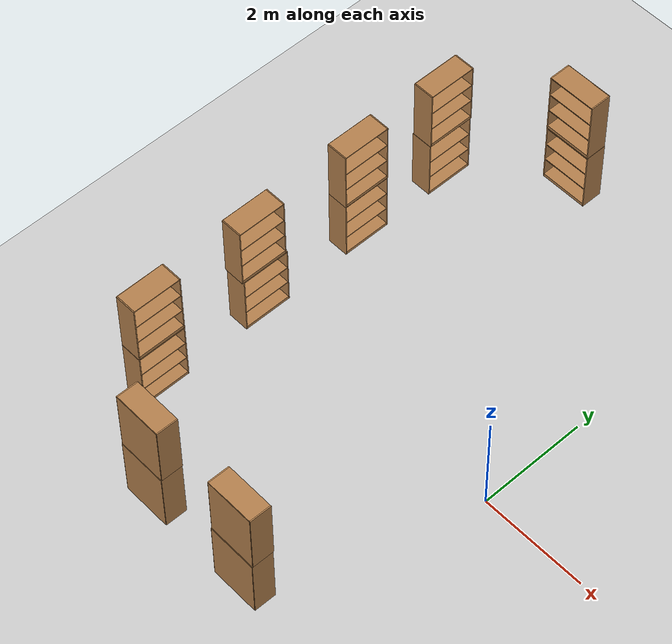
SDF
<sdf version="1.6">
 <world name="default">
  <model name="ground_plane">
   <static>1</static>
   <link name="link">
    <collision name="collision">
     <geometry><plane><normal>0 0 1</normal><size>100 100</size></plane></geometry>
     <surface><friction><ode><mu>100</mu><mu2>50</mu2></ode></friction></surface>
    </collision>
    <visual name="visual">
     <cast_shadows>0</cast_shadows>
     <geometry><plane><normal>0 0 1</normal><size>100 100</size></plane></geometry>
     <material>
      <script><uri>file://media/materials/scripts/gazebo.material</uri><name>Gazebo/Grey</name></script>
     </material>
    </visual>
   </link>
  </model>
  <model name="bookshelf_2_clone_clone">
   <static>1</static>
   <link name="link">
    <inertial><mass>1</mass></inertial>
    <collision name="back">
     <pose>0 0.005 0.6 0 -0 0</pose>
     <geometry><box><size>0.9 0.01 1.2</size></box></geometry>
    </collision>
    <visual name="visual1">
     <pose>0 0.005 0.6 0 -0 0</pose>
     <geometry><box><size>0.9 0.01 1.2</size></box></geometry>
     <material>
      <script><uri>file://media/materials/scripts/gazebo.material</uri><name>Gazebo/Wood</name></script>
     </material>
    </visual>
    <collision name="left_side">
     <pose>0.45 -0.195 0.6 0 -0 0</pose>
     <geometry><box><size>0.02 0.4 1.2</size></box></geometry>
    </collision>
    <visual name="visual2">
     <pose>0.45 -0.195 0.6 0 -0 0</pose>
     <geometry><box><size>0.02 0.4 1.2</size></box></geometry>
     <material>
      <script><uri>file://media/materials/scripts/gazebo.material</uri><name>Gazebo/Wood</name></script>
     </material>
    </visual>
    <collision name="right_side">
     <pose>-0.45 -0.195 0.6 0 -0 0</pose>
     <geometry><box><size>0.02 0.4 1.2</size></box></geometry>
    </collision>
    <visual name="visual3">
     <pose>-0.45 -0.195 0.6 0 -0 0</pose>
     <geometry><box><size>0.02 0.4 1.2</size></box></geometry>
     <material>
      <script><uri>file://media/materials/scripts/gazebo.material</uri><name>Gazebo/Wood</name></script>
     </material>
    </visual>
    <collision name="bottom">
     <pose>0 -0.195 0.03 0 -0 0</pose>
     <geometry><box><size>0.88 0.4 0.06</size></box></geometry>
    </collision>
    <visual name="visual4">
     <pose>0 -0.195 0.03 0 -0 0</pose>
     <geometry><box><size>0.88 0.4 0.06</size></box></geometry>
     <material>
      <script><uri>file://media/materials/scripts/gazebo.material</uri><name>Gazebo/Wood</name></script>
     </material>
    </visual>
    <collision name="top">
     <pose>0 -0.195 1.19 0 -0 0</pose>
     <geometry><box><size>0.88 0.4 0.02</size></box></geometry>
    </collision>
    <visual name="visual5">
     <pose>0 -0.195 1.19 0 -0 0</pose>
     <geometry><box><size>0.88 0.4 0.02</size></box></geometry>
     <material>
      <script><uri>file://media/materials/scripts/gazebo.material</uri><name>Gazebo/Wood</name></script>
     </material>
    </visual>
    <collision name="low_shelf">
     <pose>0 -0.195 0.43 0 -0 0</pose>
     <geometry><box><size>0.88 0.4 0.02</size></box></geometry>
    </collision>
    <visual name="visual6">
     <pose>0 -0.195 0.43 0 -0 0</pose>
     <geometry><box><size>0.88 0.4 0.02</size></box></geometry>
     <material>
      <script><uri>file://media/materials/scripts/gazebo.material</uri><name>Gazebo/Wood</name></script>
     </material>
    </visual>
    <collision name="high_shelf">
     <pose>0 -0.195 0.8 0 -0 0</pose>
     <geometry><box><size>0.88 0.4 0.02</size></box></geometry>
    </collision>
    <visual name="visual7">
     <pose>0 -0.195 0.8 0 -0 0</pose>
     <geometry><box><size>0.88 0.4 0.02</size></box></geometry>
     <material>
      <script><uri>file://media/materials/scripts/gazebo.material</uri><name>Gazebo/Wood</name></script>
     </material>
    </visual>
   </link>
   <pose>-3.46853 5.62428 0 0 -0 0</pose>
  </model>
  <model name="bookshelf_3_clone_clone">
   <static>1</static>
   <link name="link">
    <inertial><mass>1</mass></inertial>
    <collision name="back">
     <pose>0 0.005 0.6 0 -0 0</pose>
     <geometry><box><size>0.9 0.01 1.2</size></box></geometry>
    </collision>
    <visual name="visual1">
     <pose>0 0.005 0.6 0 -0 0</pose>
     <geometry><box><size>0.9 0.01 1.2</size></box></geometry>
     <material>
      <script><uri>file://media/materials/scripts/gazebo.material</uri><name>Gazebo/Wood</name></script>
     </material>
    </visual>
    <collision name="left_side">
     <pose>0.45 -0.195 0.6 0 -0 0</pose>
     <geometry><box><size>0.02 0.4 1.2</size></box></geometry>
    </collision>
    <visual name="visual2">
     <pose>0.45 -0.195 0.6 0 -0 0</pose>
     <geometry><box><size>0.02 0.4 1.2</size></box></geometry>
     <material>
      <script><uri>file://media/materials/scripts/gazebo.material</uri><name>Gazebo/Wood</name></script>
     </material>
    </visual>
    <collision name="right_side">
     <pose>-0.45 -0.195 0.6 0 -0 0</pose>
     <geometry><box><size>0.02 0.4 1.2</size></box></geometry>
    </collision>
    <visual name="visual3">
     <pose>-0.45 -0.195 0.6 0 -0 0</pose>
     <geometry><box><size>0.02 0.4 1.2</size></box></geometry>
     <material>
      <script><uri>file://media/materials/scripts/gazebo.material</uri><name>Gazebo/Wood</name></script>
     </material>
    </visual>
    <collision name="bottom">
     <pose>0 -0.195 0.03 0 -0 0</pose>
     <geometry><box><size>0.88 0.4 0.06</size></box></geometry>
    </collision>
    <visual name="visual4">
     <pose>0 -0.195 0.03 0 -0 0</pose>
     <geometry><box><size>0.88 0.4 0.06</size></box></geometry>
     <material>
      <script><uri>file://media/materials/scripts/gazebo.material</uri><name>Gazebo/Wood</name></script>
     </material>
    </visual>
    <collision name="top">
     <pose>0 -0.195 1.19 0 -0 0</pose>
     <geometry><box><size>0.88 0.4 0.02</size></box></geometry>
    </collision>
    <visual name="visual5">
     <pose>0 -0.195 1.19 0 -0 0</pose>
     <geometry><box><size>0.88 0.4 0.02</size></box></geometry>
     <material>
      <script><uri>file://media/materials/scripts/gazebo.material</uri><name>Gazebo/Wood</name></script>
     </material>
    </visual>
    <collision name="low_shelf">
     <pose>0 -0.195 0.43 0 -0 0</pose>
     <geometry><box><size>0.88 0.4 0.02</size></box></geometry>
    </collision>
    <visual name="visual6">
     <pose>0 -0.195 0.43 0 -0 0</pose>
     <geometry><box><size>0.88 0.4 0.02</size></box></geometry>
     <material>
      <script><uri>file://media/materials/scripts/gazebo.material</uri><name>Gazebo/Wood</name></script>
     </material>
    </visual>
    <collision name="high_shelf">
     <pose>0 -0.195 0.8 0 -0 0</pose>
     <geometry><box><size>0.88 0.4 0.02</size></box></geometry>
    </collision>
    <visual name="visual7">
     <pose>0 -0.195 0.8 0 -0 0</pose>
     <geometry><box><size>0.88 0.4 0.02</size></box></geometry>
     <material>
      <script><uri>file://media/materials/scripts/gazebo.material</uri><name>Gazebo/Wood</name></script>
     </material>
    </visual>
   </link>
   <pose>-3.47373 5.62521 1.20481 0 -0 0</pose>
  </model>
  <model name="bookshelf_5_clone_2">
   <static>1</static>
   <link name="link">
    <inertial><mass>1</mass></inertial>
    <collision name="back">
     <pose>0 0.005 0.6 0 -0 0</pose>
     <geometry><box><size>0.9 0.01 1.2</size></box></geometry>
    </collision>
    <visual name="visual1">
     <pose>0 0.005 0.6 0 -0 0</pose>
     <geometry><box><size>0.9 0.01 1.2</size></box></geometry>
     <material>
      <script><uri>file://media/materials/scripts/gazebo.material</uri><name>Gazebo/Wood</name></script>
     </material>
    </visual>
    <collision name="left_side">
     <pose>0.45 -0.195 0.6 0 -0 0</pose>
     <geometry><box><size>0.02 0.4 1.2</size></box></geometry>
    </collision>
    <visual name="visual2">
     <pose>0.45 -0.195 0.6 0 -0 0</pose>
     <geometry><box><size>0.02 0.4 1.2</size></box></geometry>
     <material>
      <script><uri>file://media/materials/scripts/gazebo.material</uri><name>Gazebo/Wood</name></script>
     </material>
    </visual>
    <collision name="right_side">
     <pose>-0.45 -0.195 0.6 0 -0 0</pose>
     <geometry><box><size>0.02 0.4 1.2</size></box></geometry>
    </collision>
    <visual name="visual3">
     <pose>-0.45 -0.195 0.6 0 -0 0</pose>
     <geometry><box><size>0.02 0.4 1.2</size></box></geometry>
     <material>
      <script><uri>file://media/materials/scripts/gazebo.material</uri><name>Gazebo/Wood</name></script>
     </material>
    </visual>
    <collision name="bottom">
     <pose>0 -0.195 0.03 0 -0 0</pose>
     <geometry><box><size>0.88 0.4 0.06</size></box></geometry>
    </collision>
    <visual name="visual4">
     <pose>0 -0.195 0.03 0 -0 0</pose>
     <geometry><box><size>0.88 0.4 0.06</size></box></geometry>
     <material>
      <script><uri>file://media/materials/scripts/gazebo.material</uri><name>Gazebo/Wood</name></script>
     </material>
    </visual>
    <collision name="top">
     <pose>0 -0.195 1.19 0 -0 0</pose>
     <geometry><box><size>0.88 0.4 0.02</size></box></geometry>
    </collision>
    <visual name="visual5">
     <pose>0 -0.195 1.19 0 -0 0</pose>
     <geometry><box><size>0.88 0.4 0.02</size></box></geometry>
     <material>
      <script><uri>file://media/materials/scripts/gazebo.material</uri><name>Gazebo/Wood</name></script>
     </material>
    </visual>
    <collision name="low_shelf">
     <pose>0 -0.195 0.43 0 -0 0</pose>
     <geometry><box><size>0.88 0.4 0.02</size></box></geometry>
    </collision>
    <visual name="visual6">
     <pose>0 -0.195 0.43 0 -0 0</pose>
     <geometry><box><size>0.88 0.4 0.02</size></box></geometry>
     <material>
      <script><uri>file://media/materials/scripts/gazebo.material</uri><name>Gazebo/Wood</name></script>
     </material>
    </visual>
    <collision name="high_shelf">
     <pose>0 -0.195 0.8 0 -0 0</pose>
     <geometry><box><size>0.88 0.4 0.02</size></box></geometry>
    </collision>
    <visual name="visual7">
     <pose>0 -0.195 0.8 0 -0 0</pose>
     <geometry><box><size>0.88 0.4 0.02</size></box></geometry>
     <material>
      <script><uri>file://media/materials/scripts/gazebo.material</uri><name>Gazebo/Wood</name></script>
     </material>
    </visual>
   </link>
   <pose>-1.42311 -3.81825 0 0 -0 3.12955</pose>
  </model>
  <model name="bookshelf_5_clone_5">
   <static>1</static>
   <link name="link">
    <inertial><mass>1</mass></inertial>
    <collision name="back">
     <pose>0 0.005 0.6 0 -0 0</pose>
     <geometry><box><size>0.9 0.01 1.2</size></box></geometry>
    </collision>
    <visual name="visual1">
     <pose>0 0.005 0.6 0 -0 0</pose>
     <geometry><box><size>0.9 0.01 1.2</size></box></geometry>
     <material>
      <script><uri>file://media/materials/scripts/gazebo.material</uri><name>Gazebo/Wood</name></script>
     </material>
    </visual>
    <collision name="left_side">
     <pose>0.45 -0.195 0.6 0 -0 0</pose>
     <geometry><box><size>0.02 0.4 1.2</size></box></geometry>
    </collision>
    <visual name="visual2">
     <pose>0.45 -0.195 0.6 0 -0 0</pose>
     <geometry><box><size>0.02 0.4 1.2</size></box></geometry>
     <material>
      <script><uri>file://media/materials/scripts/gazebo.material</uri><name>Gazebo/Wood</name></script>
     </material>
    </visual>
    <collision name="right_side">
     <pose>-0.45 -0.195 0.6 0 -0 0</pose>
     <geometry><box><size>0.02 0.4 1.2</size></box></geometry>
    </collision>
    <visual name="visual3">
     <pose>-0.45 -0.195 0.6 0 -0 0</pose>
     <geometry><box><size>0.02 0.4 1.2</size></box></geometry>
     <material>
      <script><uri>file://media/materials/scripts/gazebo.material</uri><name>Gazebo/Wood</name></script>
     </material>
    </visual>
    <collision name="bottom">
     <pose>0 -0.195 0.03 0 -0 0</pose>
     <geometry><box><size>0.88 0.4 0.06</size></box></geometry>
    </collision>
    <visual name="visual4">
     <pose>0 -0.195 0.03 0 -0 0</pose>
     <geometry><box><size>0.88 0.4 0.06</size></box></geometry>
     <material>
      <script><uri>file://media/materials/scripts/gazebo.material</uri><name>Gazebo/Wood</name></script>
     </material>
    </visual>
    <collision name="top">
     <pose>0 -0.195 1.19 0 -0 0</pose>
     <geometry><box><size>0.88 0.4 0.02</size></box></geometry>
    </collision>
    <visual name="visual5">
     <pose>0 -0.195 1.19 0 -0 0</pose>
     <geometry><box><size>0.88 0.4 0.02</size></box></geometry>
     <material>
      <script><uri>file://media/materials/scripts/gazebo.material</uri><name>Gazebo/Wood</name></script>
     </material>
    </visual>
    <collision name="low_shelf">
     <pose>0 -0.195 0.43 0 -0 0</pose>
     <geometry><box><size>0.88 0.4 0.02</size></box></geometry>
    </collision>
    <visual name="visual6">
     <pose>0 -0.195 0.43 0 -0 0</pose>
     <geometry><box><size>0.88 0.4 0.02</size></box></geometry>
     <material>
      <script><uri>file://media/materials/scripts/gazebo.material</uri><name>Gazebo/Wood</name></script>
     </material>
    </visual>
    <collision name="high_shelf">
     <pose>0 -0.195 0.8 0 -0 0</pose>
     <geometry><box><size>0.88 0.4 0.02</size></box></geometry>
    </collision>
    <visual name="visual7">
     <pose>0 -0.195 0.8 0 -0 0</pose>
     <geometry><box><size>0.88 0.4 0.02</size></box></geometry>
     <material>
      <script><uri>file://media/materials/scripts/gazebo.material</uri><name>Gazebo/Wood</name></script>
     </material>
    </visual>
   </link>
   <pose>-3.44979 -3.80253 0 0 -0 3.12955</pose>
  </model>
  <model name="bookshelf_5_clone_clone_0">
   <static>1</static>
   <link name="link">
    <inertial><mass>1</mass></inertial>
    <collision name="back">
     <pose>0 0.005 0.6 0 -0 0</pose>
     <geometry><box><size>0.9 0.01 1.2</size></box></geometry>
    </collision>
    <visual name="visual1">
     <pose>0 0.005 0.6 0 -0 0</pose>
     <geometry><box><size>0.9 0.01 1.2</size></box></geometry>
     <material>
      <script><uri>file://media/materials/scripts/gazebo.material</uri><name>Gazebo/Wood</name></script>
     </material>
    </visual>
    <collision name="left_side">
     <pose>0.45 -0.195 0.6 0 -0 0</pose>
     <geometry><box><size>0.02 0.4 1.2</size></box></geometry>
    </collision>
    <visual name="visual2">
     <pose>0.45 -0.195 0.6 0 -0 0</pose>
     <geometry><box><size>0.02 0.4 1.2</size></box></geometry>
     <material>
      <script><uri>file://media/materials/scripts/gazebo.material</uri><name>Gazebo/Wood</name></script>
     </material>
    </visual>
    <collision name="right_side">
     <pose>-0.45 -0.195 0.6 0 -0 0</pose>
     <geometry><box><size>0.02 0.4 1.2</size></box></geometry>
    </collision>
    <visual name="visual3">
     <pose>-0.45 -0.195 0.6 0 -0 0</pose>
     <geometry><box><size>0.02 0.4 1.2</size></box></geometry>
     <material>
      <script><uri>file://media/materials/scripts/gazebo.material</uri><name>Gazebo/Wood</name></script>
     </material>
    </visual>
    <collision name="bottom">
     <pose>0 -0.195 0.03 0 -0 0</pose>
     <geometry><box><size>0.88 0.4 0.06</size></box></geometry>
    </collision>
    <visual name="visual4">
     <pose>0 -0.195 0.03 0 -0 0</pose>
     <geometry><box><size>0.88 0.4 0.06</size></box></geometry>
     <material>
      <script><uri>file://media/materials/scripts/gazebo.material</uri><name>Gazebo/Wood</name></script>
     </material>
    </visual>
    <collision name="top">
     <pose>0 -0.195 1.19 0 -0 0</pose>
     <geometry><box><size>0.88 0.4 0.02</size></box></geometry>
    </collision>
    <visual name="visual5">
     <pose>0 -0.195 1.19 0 -0 0</pose>
     <geometry><box><size>0.88 0.4 0.02</size></box></geometry>
     <material>
      <script><uri>file://media/materials/scripts/gazebo.material</uri><name>Gazebo/Wood</name></script>
     </material>
    </visual>
    <collision name="low_shelf">
     <pose>0 -0.195 0.43 0 -0 0</pose>
     <geometry><box><size>0.88 0.4 0.02</size></box></geometry>
    </collision>
    <visual name="visual6">
     <pose>0 -0.195 0.43 0 -0 0</pose>
     <geometry><box><size>0.88 0.4 0.02</size></box></geometry>
     <material>
      <script><uri>file://media/materials/scripts/gazebo.material</uri><name>Gazebo/Wood</name></script>
     </material>
    </visual>
    <collision name="high_shelf">
     <pose>0 -0.195 0.8 0 -0 0</pose>
     <geometry><box><size>0.88 0.4 0.02</size></box></geometry>
    </collision>
    <visual name="visual7">
     <pose>0 -0.195 0.8 0 -0 0</pose>
     <geometry><box><size>0.88 0.4 0.02</size></box></geometry>
     <material>
      <script><uri>file://media/materials/scripts/gazebo.material</uri><name>Gazebo/Wood</name></script>
     </material>
    </visual>
   </link>
   <pose>-1.41694 -3.81004 1.21139 0 -0 3.12955</pose>
  </model>
  <model name="bookshelf_5_clone_clone_1">
   <static>1</static>
   <link name="link">
    <inertial><mass>1</mass></inertial>
    <collision name="back">
     <pose>0 0.005 0.6 0 -0 0</pose>
     <geometry><box><size>0.9 0.01 1.2</size></box></geometry>
    </collision>
    <visual name="visual1">
     <pose>0 0.005 0.6 0 -0 0</pose>
     <geometry><box><size>0.9 0.01 1.2</size></box></geometry>
     <material>
      <script><uri>file://media/materials/scripts/gazebo.material</uri><name>Gazebo/Wood</name></script>
     </material>
    </visual>
    <collision name="left_side">
     <pose>0.45 -0.195 0.6 0 -0 0</pose>
     <geometry><box><size>0.02 0.4 1.2</size></box></geometry>
    </collision>
    <visual name="visual2">
     <pose>0.45 -0.195 0.6 0 -0 0</pose>
     <geometry><box><size>0.02 0.4 1.2</size></box></geometry>
     <material>
      <script><uri>file://media/materials/scripts/gazebo.material</uri><name>Gazebo/Wood</name></script>
     </material>
    </visual>
    <collision name="right_side">
     <pose>-0.45 -0.195 0.6 0 -0 0</pose>
     <geometry><box><size>0.02 0.4 1.2</size></box></geometry>
    </collision>
    <visual name="visual3">
     <pose>-0.45 -0.195 0.6 0 -0 0</pose>
     <geometry><box><size>0.02 0.4 1.2</size></box></geometry>
     <material>
      <script><uri>file://media/materials/scripts/gazebo.material</uri><name>Gazebo/Wood</name></script>
     </material>
    </visual>
    <collision name="bottom">
     <pose>0 -0.195 0.03 0 -0 0</pose>
     <geometry><box><size>0.88 0.4 0.06</size></box></geometry>
    </collision>
    <visual name="visual4">
     <pose>0 -0.195 0.03 0 -0 0</pose>
     <geometry><box><size>0.88 0.4 0.06</size></box></geometry>
     <material>
      <script><uri>file://media/materials/scripts/gazebo.material</uri><name>Gazebo/Wood</name></script>
     </material>
    </visual>
    <collision name="top">
     <pose>0 -0.195 1.19 0 -0 0</pose>
     <geometry><box><size>0.88 0.4 0.02</size></box></geometry>
    </collision>
    <visual name="visual5">
     <pose>0 -0.195 1.19 0 -0 0</pose>
     <geometry><box><size>0.88 0.4 0.02</size></box></geometry>
     <material>
      <script><uri>file://media/materials/scripts/gazebo.material</uri><name>Gazebo/Wood</name></script>
     </material>
    </visual>
    <collision name="low_shelf">
     <pose>0 -0.195 0.43 0 -0 0</pose>
     <geometry><box><size>0.88 0.4 0.02</size></box></geometry>
    </collision>
    <visual name="visual6">
     <pose>0 -0.195 0.43 0 -0 0</pose>
     <geometry><box><size>0.88 0.4 0.02</size></box></geometry>
     <material>
      <script><uri>file://media/materials/scripts/gazebo.material</uri><name>Gazebo/Wood</name></script>
     </material>
    </visual>
    <collision name="high_shelf">
     <pose>0 -0.195 0.8 0 -0 0</pose>
     <geometry><box><size>0.88 0.4 0.02</size></box></geometry>
    </collision>
    <visual name="visual7">
     <pose>0 -0.195 0.8 0 -0 0</pose>
     <geometry><box><size>0.88 0.4 0.02</size></box></geometry>
     <material>
      <script><uri>file://media/materials/scripts/gazebo.material</uri><name>Gazebo/Wood</name></script>
     </material>
    </visual>
   </link>
   <pose>-3.44383 -3.79926 1.21139 0 -0 3.12955</pose>
  </model>
  <model name="bookshelf_0_clone_0">
   <static>1</static>
   <link name="link">
    <inertial><mass>1</mass></inertial>
    <collision name="back">
     <pose>0 0.005 0.6 0 -0 0</pose>
     <geometry><box><size>0.9 0.01 1.2</size></box></geometry>
    </collision>
    <visual name="visual1">
     <pose>0 0.005 0.6 0 -0 0</pose>
     <geometry><box><size>0.9 0.01 1.2</size></box></geometry>
     <material>
      <script><uri>file://media/materials/scripts/gazebo.material</uri><name>Gazebo/Wood</name></script>
     </material>
    </visual>
    <collision name="left_side">
     <pose>0.45 -0.195 0.6 0 -0 0</pose>
     <geometry><box><size>0.02 0.4 1.2</size></box></geometry>
    </collision>
    <visual name="visual2">
     <pose>0.45 -0.195 0.6 0 -0 0</pose>
     <geometry><box><size>0.02 0.4 1.2</size></box></geometry>
     <material>
      <script><uri>file://media/materials/scripts/gazebo.material</uri><name>Gazebo/Wood</name></script>
     </material>
    </visual>
    <collision name="right_side">
     <pose>-0.45 -0.195 0.6 0 -0 0</pose>
     <geometry><box><size>0.02 0.4 1.2</size></box></geometry>
    </collision>
    <visual name="visual3">
     <pose>-0.45 -0.195 0.6 0 -0 0</pose>
     <geometry><box><size>0.02 0.4 1.2</size></box></geometry>
     <material>
      <script><uri>file://media/materials/scripts/gazebo.material</uri><name>Gazebo/Wood</name></script>
     </material>
    </visual>
    <collision name="bottom">
     <pose>0 -0.195 0.03 0 -0 0</pose>
     <geometry><box><size>0.88 0.4 0.06</size></box></geometry>
    </collision>
    <visual name="visual4">
     <pose>0 -0.195 0.03 0 -0 0</pose>
     <geometry><box><size>0.88 0.4 0.06</size></box></geometry>
     <material>
      <script><uri>file://media/materials/scripts/gazebo.material</uri><name>Gazebo/Wood</name></script>
     </material>
    </visual>
    <collision name="top">
     <pose>0 -0.195 1.19 0 -0 0</pose>
     <geometry><box><size>0.88 0.4 0.02</size></box></geometry>
    </collision>
    <visual name="visual5">
     <pose>0 -0.195 1.19 0 -0 0</pose>
     <geometry><box><size>0.88 0.4 0.02</size></box></geometry>
     <material>
      <script><uri>file://media/materials/scripts/gazebo.material</uri><name>Gazebo/Wood</name></script>
     </material>
    </visual>
    <collision name="low_shelf">
     <pose>0 -0.195 0.43 0 -0 0</pose>
     <geometry><box><size>0.88 0.4 0.02</size></box></geometry>
    </collision>
    <visual name="visual6">
     <pose>0 -0.195 0.43 0 -0 0</pose>
     <geometry><box><size>0.88 0.4 0.02</size></box></geometry>
     <material>
      <script><uri>file://media/materials/scripts/gazebo.material</uri><name>Gazebo/Wood</name></script>
     </material>
    </visual>
    <collision name="high_shelf">
     <pose>0 -0.195 0.8 0 -0 0</pose>
     <geometry><box><size>0.88 0.4 0.02</size></box></geometry>
    </collision>
    <visual name="visual7">
     <pose>0 -0.195 0.8 0 -0 0</pose>
     <geometry><box><size>0.88 0.4 0.02</size></box></geometry>
     <material>
      <script><uri>file://media/materials/scripts/gazebo.material</uri><name>Gazebo/Wood</name></script>
     </material>
    </visual>
   </link>
   <pose>-5.30935 -0.025093 0 0 -0 1.5697</pose>
  </model>
  <model name="bookshelf_0_clone_0_clone">
   <static>1</static>
   <link name="link">
    <inertial><mass>1</mass></inertial>
    <collision name="back">
     <pose>0 0.005 0.6 0 -0 0</pose>
     <geometry><box><size>0.9 0.01 1.2</size></box></geometry>
    </collision>
    <visual name="visual1">
     <pose>0 0.005 0.6 0 -0 0</pose>
     <geometry><box><size>0.9 0.01 1.2</size></box></geometry>
     <material>
      <script><uri>file://media/materials/scripts/gazebo.material</uri><name>Gazebo/Wood</name></script>
     </material>
    </visual>
    <collision name="left_side">
     <pose>0.45 -0.195 0.6 0 -0 0</pose>
     <geometry><box><size>0.02 0.4 1.2</size></box></geometry>
    </collision>
    <visual name="visual2">
     <pose>0.45 -0.195 0.6 0 -0 0</pose>
     <geometry><box><size>0.02 0.4 1.2</size></box></geometry>
     <material>
      <script><uri>file://media/materials/scripts/gazebo.material</uri><name>Gazebo/Wood</name></script>
     </material>
    </visual>
    <collision name="right_side">
     <pose>-0.45 -0.195 0.6 0 -0 0</pose>
     <geometry><box><size>0.02 0.4 1.2</size></box></geometry>
    </collision>
    <visual name="visual3">
     <pose>-0.45 -0.195 0.6 0 -0 0</pose>
     <geometry><box><size>0.02 0.4 1.2</size></box></geometry>
     <material>
      <script><uri>file://media/materials/scripts/gazebo.material</uri><name>Gazebo/Wood</name></script>
     </material>
    </visual>
    <collision name="bottom">
     <pose>0 -0.195 0.03 0 -0 0</pose>
     <geometry><box><size>0.88 0.4 0.06</size></box></geometry>
    </collision>
    <visual name="visual4">
     <pose>0 -0.195 0.03 0 -0 0</pose>
     <geometry><box><size>0.88 0.4 0.06</size></box></geometry>
     <material>
      <script><uri>file://media/materials/scripts/gazebo.material</uri><name>Gazebo/Wood</name></script>
     </material>
    </visual>
    <collision name="top">
     <pose>0 -0.195 1.19 0 -0 0</pose>
     <geometry><box><size>0.88 0.4 0.02</size></box></geometry>
    </collision>
    <visual name="visual5">
     <pose>0 -0.195 1.19 0 -0 0</pose>
     <geometry><box><size>0.88 0.4 0.02</size></box></geometry>
     <material>
      <script><uri>file://media/materials/scripts/gazebo.material</uri><name>Gazebo/Wood</name></script>
     </material>
    </visual>
    <collision name="low_shelf">
     <pose>0 -0.195 0.43 0 -0 0</pose>
     <geometry><box><size>0.88 0.4 0.02</size></box></geometry>
    </collision>
    <visual name="visual6">
     <pose>0 -0.195 0.43 0 -0 0</pose>
     <geometry><box><size>0.88 0.4 0.02</size></box></geometry>
     <material>
      <script><uri>file://media/materials/scripts/gazebo.material</uri><name>Gazebo/Wood</name></script>
     </material>
    </visual>
    <collision name="high_shelf">
     <pose>0 -0.195 0.8 0 -0 0</pose>
     <geometry><box><size>0.88 0.4 0.02</size></box></geometry>
    </collision>
    <visual name="visual7">
     <pose>0 -0.195 0.8 0 -0 0</pose>
     <geometry><box><size>0.88 0.4 0.02</size></box></geometry>
     <material>
      <script><uri>file://media/materials/scripts/gazebo.material</uri><name>Gazebo/Wood</name></script>
     </material>
    </visual>
   </link>
   <pose>-5.33454 2.15943 0 0 -0 1.5697</pose>
  </model>
  <model name="bookshelf_0_clone_0_clone_0">
   <static>1</static>
   <link name="link">
    <inertial><mass>1</mass></inertial>
    <collision name="back">
     <pose>0 0.005 0.6 0 -0 0</pose>
     <geometry><box><size>0.9 0.01 1.2</size></box></geometry>
    </collision>
    <visual name="visual1">
     <pose>0 0.005 0.6 0 -0 0</pose>
     <geometry><box><size>0.9 0.01 1.2</size></box></geometry>
     <material>
      <script><uri>file://media/materials/scripts/gazebo.material</uri><name>Gazebo/Wood</name></script>
     </material>
    </visual>
    <collision name="left_side">
     <pose>0.45 -0.195 0.6 0 -0 0</pose>
     <geometry><box><size>0.02 0.4 1.2</size></box></geometry>
    </collision>
    <visual name="visual2">
     <pose>0.45 -0.195 0.6 0 -0 0</pose>
     <geometry><box><size>0.02 0.4 1.2</size></box></geometry>
     <material>
      <script><uri>file://media/materials/scripts/gazebo.material</uri><name>Gazebo/Wood</name></script>
     </material>
    </visual>
    <collision name="right_side">
     <pose>-0.45 -0.195 0.6 0 -0 0</pose>
     <geometry><box><size>0.02 0.4 1.2</size></box></geometry>
    </collision>
    <visual name="visual3">
     <pose>-0.45 -0.195 0.6 0 -0 0</pose>
     <geometry><box><size>0.02 0.4 1.2</size></box></geometry>
     <material>
      <script><uri>file://media/materials/scripts/gazebo.material</uri><name>Gazebo/Wood</name></script>
     </material>
    </visual>
    <collision name="bottom">
     <pose>0 -0.195 0.03 0 -0 0</pose>
     <geometry><box><size>0.88 0.4 0.06</size></box></geometry>
    </collision>
    <visual name="visual4">
     <pose>0 -0.195 0.03 0 -0 0</pose>
     <geometry><box><size>0.88 0.4 0.06</size></box></geometry>
     <material>
      <script><uri>file://media/materials/scripts/gazebo.material</uri><name>Gazebo/Wood</name></script>
     </material>
    </visual>
    <collision name="top">
     <pose>0 -0.195 1.19 0 -0 0</pose>
     <geometry><box><size>0.88 0.4 0.02</size></box></geometry>
    </collision>
    <visual name="visual5">
     <pose>0 -0.195 1.19 0 -0 0</pose>
     <geometry><box><size>0.88 0.4 0.02</size></box></geometry>
     <material>
      <script><uri>file://media/materials/scripts/gazebo.material</uri><name>Gazebo/Wood</name></script>
     </material>
    </visual>
    <collision name="low_shelf">
     <pose>0 -0.195 0.43 0 -0 0</pose>
     <geometry><box><size>0.88 0.4 0.02</size></box></geometry>
    </collision>
    <visual name="visual6">
     <pose>0 -0.195 0.43 0 -0 0</pose>
     <geometry><box><size>0.88 0.4 0.02</size></box></geometry>
     <material>
      <script><uri>file://media/materials/scripts/gazebo.material</uri><name>Gazebo/Wood</name></script>
     </material>
    </visual>
    <collision name="high_shelf">
     <pose>0 -0.195 0.8 0 -0 0</pose>
     <geometry><box><size>0.88 0.4 0.02</size></box></geometry>
    </collision>
    <visual name="visual7">
     <pose>0 -0.195 0.8 0 -0 0</pose>
     <geometry><box><size>0.88 0.4 0.02</size></box></geometry>
     <material>
      <script><uri>file://media/materials/scripts/gazebo.material</uri><name>Gazebo/Wood</name></script>
     </material>
    </visual>
   </link>
   <pose>-5.32765 4.01778 0 0 -0 1.5697</pose>
  </model>
  <model name="bookshelf_0_clone_0_clone_1_clone_0">
   <static>1</static>
   <link name="link">
    <inertial><mass>1</mass></inertial>
    <collision name="back">
     <pose>0 0.005 0.6 0 -0 0</pose>
     <geometry><box><size>0.9 0.01 1.2</size></box></geometry>
    </collision>
    <visual name="visual1">
     <pose>0 0.005 0.6 0 -0 0</pose>
     <geometry><box><size>0.9 0.01 1.2</size></box></geometry>
     <material>
      <script><uri>file://media/materials/scripts/gazebo.material</uri><name>Gazebo/Wood</name></script>
     </material>
    </visual>
    <collision name="left_side">
     <pose>0.45 -0.195 0.6 0 -0 0</pose>
     <geometry><box><size>0.02 0.4 1.2</size></box></geometry>
    </collision>
    <visual name="visual2">
     <pose>0.45 -0.195 0.6 0 -0 0</pose>
     <geometry><box><size>0.02 0.4 1.2</size></box></geometry>
     <material>
      <script><uri>file://media/materials/scripts/gazebo.material</uri><name>Gazebo/Wood</name></script>
     </material>
    </visual>
    <collision name="right_side">
     <pose>-0.45 -0.195 0.6 0 -0 0</pose>
     <geometry><box><size>0.02 0.4 1.2</size></box></geometry>
    </collision>
    <visual name="visual3">
     <pose>-0.45 -0.195 0.6 0 -0 0</pose>
     <geometry><box><size>0.02 0.4 1.2</size></box></geometry>
     <material>
      <script><uri>file://media/materials/scripts/gazebo.material</uri><name>Gazebo/Wood</name></script>
     </material>
    </visual>
    <collision name="bottom">
     <pose>0 -0.195 0.03 0 -0 0</pose>
     <geometry><box><size>0.88 0.4 0.06</size></box></geometry>
    </collision>
    <visual name="visual4">
     <pose>0 -0.195 0.03 0 -0 0</pose>
     <geometry><box><size>0.88 0.4 0.06</size></box></geometry>
     <material>
      <script><uri>file://media/materials/scripts/gazebo.material</uri><name>Gazebo/Wood</name></script>
     </material>
    </visual>
    <collision name="top">
     <pose>0 -0.195 1.19 0 -0 0</pose>
     <geometry><box><size>0.88 0.4 0.02</size></box></geometry>
    </collision>
    <visual name="visual5">
     <pose>0 -0.195 1.19 0 -0 0</pose>
     <geometry><box><size>0.88 0.4 0.02</size></box></geometry>
     <material>
      <script><uri>file://media/materials/scripts/gazebo.material</uri><name>Gazebo/Wood</name></script>
     </material>
    </visual>
    <collision name="low_shelf">
     <pose>0 -0.195 0.43 0 -0 0</pose>
     <geometry><box><size>0.88 0.4 0.02</size></box></geometry>
    </collision>
    <visual name="visual6">
     <pose>0 -0.195 0.43 0 -0 0</pose>
     <geometry><box><size>0.88 0.4 0.02</size></box></geometry>
     <material>
      <script><uri>file://media/materials/scripts/gazebo.material</uri><name>Gazebo/Wood</name></script>
     </material>
    </visual>
    <collision name="high_shelf">
     <pose>0 -0.195 0.8 0 -0 0</pose>
     <geometry><box><size>0.88 0.4 0.02</size></box></geometry>
    </collision>
    <visual name="visual7">
     <pose>0 -0.195 0.8 0 -0 0</pose>
     <geometry><box><size>0.88 0.4 0.02</size></box></geometry>
     <material>
      <script><uri>file://media/materials/scripts/gazebo.material</uri><name>Gazebo/Wood</name></script>
     </material>
    </visual>
   </link>
   <pose>-5.32334 2.15341 1.21067 0 -0 1.5697</pose>
  </model>
  <model name="bookshelf_0_clone_0_clone_1_clone_1">
   <static>1</static>
   <link name="link">
    <inertial><mass>1</mass></inertial>
    <collision name="back">
     <pose>0 0.005 0.6 0 -0 0</pose>
     <geometry><box><size>0.9 0.01 1.2</size></box></geometry>
    </collision>
    <visual name="visual1">
     <pose>0 0.005 0.6 0 -0 0</pose>
     <geometry><box><size>0.9 0.01 1.2</size></box></geometry>
     <material>
      <script><uri>file://media/materials/scripts/gazebo.material</uri><name>Gazebo/Wood</name></script>
     </material>
    </visual>
    <collision name="left_side">
     <pose>0.45 -0.195 0.6 0 -0 0</pose>
     <geometry><box><size>0.02 0.4 1.2</size></box></geometry>
    </collision>
    <visual name="visual2">
     <pose>0.45 -0.195 0.6 0 -0 0</pose>
     <geometry><box><size>0.02 0.4 1.2</size></box></geometry>
     <material>
      <script><uri>file://media/materials/scripts/gazebo.material</uri><name>Gazebo/Wood</name></script>
     </material>
    </visual>
    <collision name="right_side">
     <pose>-0.45 -0.195 0.6 0 -0 0</pose>
     <geometry><box><size>0.02 0.4 1.2</size></box></geometry>
    </collision>
    <visual name="visual3">
     <pose>-0.45 -0.195 0.6 0 -0 0</pose>
     <geometry><box><size>0.02 0.4 1.2</size></box></geometry>
     <material>
      <script><uri>file://media/materials/scripts/gazebo.material</uri><name>Gazebo/Wood</name></script>
     </material>
    </visual>
    <collision name="bottom">
     <pose>0 -0.195 0.03 0 -0 0</pose>
     <geometry><box><size>0.88 0.4 0.06</size></box></geometry>
    </collision>
    <visual name="visual4">
     <pose>0 -0.195 0.03 0 -0 0</pose>
     <geometry><box><size>0.88 0.4 0.06</size></box></geometry>
     <material>
      <script><uri>file://media/materials/scripts/gazebo.material</uri><name>Gazebo/Wood</name></script>
     </material>
    </visual>
    <collision name="top">
     <pose>0 -0.195 1.19 0 -0 0</pose>
     <geometry><box><size>0.88 0.4 0.02</size></box></geometry>
    </collision>
    <visual name="visual5">
     <pose>0 -0.195 1.19 0 -0 0</pose>
     <geometry><box><size>0.88 0.4 0.02</size></box></geometry>
     <material>
      <script><uri>file://media/materials/scripts/gazebo.material</uri><name>Gazebo/Wood</name></script>
     </material>
    </visual>
    <collision name="low_shelf">
     <pose>0 -0.195 0.43 0 -0 0</pose>
     <geometry><box><size>0.88 0.4 0.02</size></box></geometry>
    </collision>
    <visual name="visual6">
     <pose>0 -0.195 0.43 0 -0 0</pose>
     <geometry><box><size>0.88 0.4 0.02</size></box></geometry>
     <material>
      <script><uri>file://media/materials/scripts/gazebo.material</uri><name>Gazebo/Wood</name></script>
     </material>
    </visual>
    <collision name="high_shelf">
     <pose>0 -0.195 0.8 0 -0 0</pose>
     <geometry><box><size>0.88 0.4 0.02</size></box></geometry>
    </collision>
    <visual name="visual7">
     <pose>0 -0.195 0.8 0 -0 0</pose>
     <geometry><box><size>0.88 0.4 0.02</size></box></geometry>
     <material>
      <script><uri>file://media/materials/scripts/gazebo.material</uri><name>Gazebo/Wood</name></script>
     </material>
    </visual>
   </link>
   <pose>-5.31196 4.0164 1.21067 0 -0 1.5697</pose>
  </model>
  <model name="bookshelf_0_clone_0_clone_1">
   <static>1</static>
   <link name="link">
    <inertial><mass>1</mass></inertial>
    <collision name="back">
     <pose>0 0.005 0.6 0 -0 0</pose>
     <geometry><box><size>0.9 0.01 1.2</size></box></geometry>
    </collision>
    <visual name="visual1">
     <pose>0 0.005 0.6 0 -0 0</pose>
     <geometry><box><size>0.9 0.01 1.2</size></box></geometry>
     <material>
      <script><uri>file://media/materials/scripts/gazebo.material</uri><name>Gazebo/Wood</name></script>
     </material>
    </visual>
    <collision name="left_side">
     <pose>0.45 -0.195 0.6 0 -0 0</pose>
     <geometry><box><size>0.02 0.4 1.2</size></box></geometry>
    </collision>
    <visual name="visual2">
     <pose>0.45 -0.195 0.6 0 -0 0</pose>
     <geometry><box><size>0.02 0.4 1.2</size></box></geometry>
     <material>
      <script><uri>file://media/materials/scripts/gazebo.material</uri><name>Gazebo/Wood</name></script>
     </material>
    </visual>
    <collision name="right_side">
     <pose>-0.45 -0.195 0.6 0 -0 0</pose>
     <geometry><box><size>0.02 0.4 1.2</size></box></geometry>
    </collision>
    <visual name="visual3">
     <pose>-0.45 -0.195 0.6 0 -0 0</pose>
     <geometry><box><size>0.02 0.4 1.2</size></box></geometry>
     <material>
      <script><uri>file://media/materials/scripts/gazebo.material</uri><name>Gazebo/Wood</name></script>
     </material>
    </visual>
    <collision name="bottom">
     <pose>0 -0.195 0.03 0 -0 0</pose>
     <geometry><box><size>0.88 0.4 0.06</size></box></geometry>
    </collision>
    <visual name="visual4">
     <pose>0 -0.195 0.03 0 -0 0</pose>
     <geometry><box><size>0.88 0.4 0.06</size></box></geometry>
     <material>
      <script><uri>file://media/materials/scripts/gazebo.material</uri><name>Gazebo/Wood</name></script>
     </material>
    </visual>
    <collision name="top">
     <pose>0 -0.195 1.19 0 -0 0</pose>
     <geometry><box><size>0.88 0.4 0.02</size></box></geometry>
    </collision>
    <visual name="visual5">
     <pose>0 -0.195 1.19 0 -0 0</pose>
     <geometry><box><size>0.88 0.4 0.02</size></box></geometry>
     <material>
      <script><uri>file://media/materials/scripts/gazebo.material</uri><name>Gazebo/Wood</name></script>
     </material>
    </visual>
    <collision name="low_shelf">
     <pose>0 -0.195 0.43 0 -0 0</pose>
     <geometry><box><size>0.88 0.4 0.02</size></box></geometry>
    </collision>
    <visual name="visual6">
     <pose>0 -0.195 0.43 0 -0 0</pose>
     <geometry><box><size>0.88 0.4 0.02</size></box></geometry>
     <material>
      <script><uri>file://media/materials/scripts/gazebo.material</uri><name>Gazebo/Wood</name></script>
     </material>
    </visual>
    <collision name="high_shelf">
     <pose>0 -0.195 0.8 0 -0 0</pose>
     <geometry><box><size>0.88 0.4 0.02</size></box></geometry>
    </collision>
    <visual name="visual7">
     <pose>0 -0.195 0.8 0 -0 0</pose>
     <geometry><box><size>0.88 0.4 0.02</size></box></geometry>
     <material>
      <script><uri>file://media/materials/scripts/gazebo.material</uri><name>Gazebo/Wood</name></script>
     </material>
    </visual>
   </link>
   <pose>-5.28921 -2.17241 0 0 -0 1.5697</pose>
  </model>
  <model name="bookshelf_0_clone_0_clone_1_clone_0_clone">
   <static>1</static>
   <link name="link">
    <inertial><mass>1</mass></inertial>
    <collision name="back">
     <pose>0 0.005 0.6 0 -0 0</pose>
     <geometry><box><size>0.9 0.01 1.2</size></box></geometry>
    </collision>
    <visual name="visual1">
     <pose>0 0.005 0.6 0 -0 0</pose>
     <geometry><box><size>0.9 0.01 1.2</size></box></geometry>
     <material>
      <script><uri>file://media/materials/scripts/gazebo.material</uri><name>Gazebo/Wood</name></script>
     </material>
    </visual>
    <collision name="left_side">
     <pose>0.45 -0.195 0.6 0 -0 0</pose>
     <geometry><box><size>0.02 0.4 1.2</size></box></geometry>
    </collision>
    <visual name="visual2">
     <pose>0.45 -0.195 0.6 0 -0 0</pose>
     <geometry><box><size>0.02 0.4 1.2</size></box></geometry>
     <material>
      <script><uri>file://media/materials/scripts/gazebo.material</uri><name>Gazebo/Wood</name></script>
     </material>
    </visual>
    <collision name="right_side">
     <pose>-0.45 -0.195 0.6 0 -0 0</pose>
     <geometry><box><size>0.02 0.4 1.2</size></box></geometry>
    </collision>
    <visual name="visual3">
     <pose>-0.45 -0.195 0.6 0 -0 0</pose>
     <geometry><box><size>0.02 0.4 1.2</size></box></geometry>
     <material>
      <script><uri>file://media/materials/scripts/gazebo.material</uri><name>Gazebo/Wood</name></script>
     </material>
    </visual>
    <collision name="bottom">
     <pose>0 -0.195 0.03 0 -0 0</pose>
     <geometry><box><size>0.88 0.4 0.06</size></box></geometry>
    </collision>
    <visual name="visual4">
     <pose>0 -0.195 0.03 0 -0 0</pose>
     <geometry><box><size>0.88 0.4 0.06</size></box></geometry>
     <material>
      <script><uri>file://media/materials/scripts/gazebo.material</uri><name>Gazebo/Wood</name></script>
     </material>
    </visual>
    <collision name="top">
     <pose>0 -0.195 1.19 0 -0 0</pose>
     <geometry><box><size>0.88 0.4 0.02</size></box></geometry>
    </collision>
    <visual name="visual5">
     <pose>0 -0.195 1.19 0 -0 0</pose>
     <geometry><box><size>0.88 0.4 0.02</size></box></geometry>
     <material>
      <script><uri>file://media/materials/scripts/gazebo.material</uri><name>Gazebo/Wood</name></script>
     </material>
    </visual>
    <collision name="low_shelf">
     <pose>0 -0.195 0.43 0 -0 0</pose>
     <geometry><box><size>0.88 0.4 0.02</size></box></geometry>
    </collision>
    <visual name="visual6">
     <pose>0 -0.195 0.43 0 -0 0</pose>
     <geometry><box><size>0.88 0.4 0.02</size></box></geometry>
     <material>
      <script><uri>file://media/materials/scripts/gazebo.material</uri><name>Gazebo/Wood</name></script>
     </material>
    </visual>
    <collision name="high_shelf">
     <pose>0 -0.195 0.8 0 -0 0</pose>
     <geometry><box><size>0.88 0.4 0.02</size></box></geometry>
    </collision>
    <visual name="visual7">
     <pose>0 -0.195 0.8 0 -0 0</pose>
     <geometry><box><size>0.88 0.4 0.02</size></box></geometry>
     <material>
      <script><uri>file://media/materials/scripts/gazebo.material</uri><name>Gazebo/Wood</name></script>
     </material>
    </visual>
   </link>
   <pose>-5.30537 -0.057137 1.21067 0 -0 1.5697</pose>
  </model>
  <model name="bookshelf_0_clone_0_clone_1_clone_0_clone_0">
   <static>1</static>
   <link name="link">
    <inertial><mass>1</mass></inertial>
    <collision name="back">
     <pose>0 0.005 0.6 0 -0 0</pose>
     <geometry><box><size>0.9 0.01 1.2</size></box></geometry>
    </collision>
    <visual name="visual1">
     <pose>0 0.005 0.6 0 -0 0</pose>
     <geometry><box><size>0.9 0.01 1.2</size></box></geometry>
     <material>
      <script><uri>file://media/materials/scripts/gazebo.material</uri><name>Gazebo/Wood</name></script>
     </material>
    </visual>
    <collision name="left_side">
     <pose>0.45 -0.195 0.6 0 -0 0</pose>
     <geometry><box><size>0.02 0.4 1.2</size></box></geometry>
    </collision>
    <visual name="visual2">
     <pose>0.45 -0.195 0.6 0 -0 0</pose>
     <geometry><box><size>0.02 0.4 1.2</size></box></geometry>
     <material>
      <script><uri>file://media/materials/scripts/gazebo.material</uri><name>Gazebo/Wood</name></script>
     </material>
    </visual>
    <collision name="right_side">
     <pose>-0.45 -0.195 0.6 0 -0 0</pose>
     <geometry><box><size>0.02 0.4 1.2</size></box></geometry>
    </collision>
    <visual name="visual3">
     <pose>-0.45 -0.195 0.6 0 -0 0</pose>
     <geometry><box><size>0.02 0.4 1.2</size></box></geometry>
     <material>
      <script><uri>file://media/materials/scripts/gazebo.material</uri><name>Gazebo/Wood</name></script>
     </material>
    </visual>
    <collision name="bottom">
     <pose>0 -0.195 0.03 0 -0 0</pose>
     <geometry><box><size>0.88 0.4 0.06</size></box></geometry>
    </collision>
    <visual name="visual4">
     <pose>0 -0.195 0.03 0 -0 0</pose>
     <geometry><box><size>0.88 0.4 0.06</size></box></geometry>
     <material>
      <script><uri>file://media/materials/scripts/gazebo.material</uri><name>Gazebo/Wood</name></script>
     </material>
    </visual>
    <collision name="top">
     <pose>0 -0.195 1.19 0 -0 0</pose>
     <geometry><box><size>0.88 0.4 0.02</size></box></geometry>
    </collision>
    <visual name="visual5">
     <pose>0 -0.195 1.19 0 -0 0</pose>
     <geometry><box><size>0.88 0.4 0.02</size></box></geometry>
     <material>
      <script><uri>file://media/materials/scripts/gazebo.material</uri><name>Gazebo/Wood</name></script>
     </material>
    </visual>
    <collision name="low_shelf">
     <pose>0 -0.195 0.43 0 -0 0</pose>
     <geometry><box><size>0.88 0.4 0.02</size></box></geometry>
    </collision>
    <visual name="visual6">
     <pose>0 -0.195 0.43 0 -0 0</pose>
     <geometry><box><size>0.88 0.4 0.02</size></box></geometry>
     <material>
      <script><uri>file://media/materials/scripts/gazebo.material</uri><name>Gazebo/Wood</name></script>
     </material>
    </visual>
    <collision name="high_shelf">
     <pose>0 -0.195 0.8 0 -0 0</pose>
     <geometry><box><size>0.88 0.4 0.02</size></box></geometry>
    </collision>
    <visual name="visual7">
     <pose>0 -0.195 0.8 0 -0 0</pose>
     <geometry><box><size>0.88 0.4 0.02</size></box></geometry>
     <material>
      <script><uri>file://media/materials/scripts/gazebo.material</uri><name>Gazebo/Wood</name></script>
     </material>
    </visual>
   </link>
   <pose>-5.28921 -2.17241 1.21067 0 -0 1.5697</pose>
  </model>
 </world>
</sdf>
